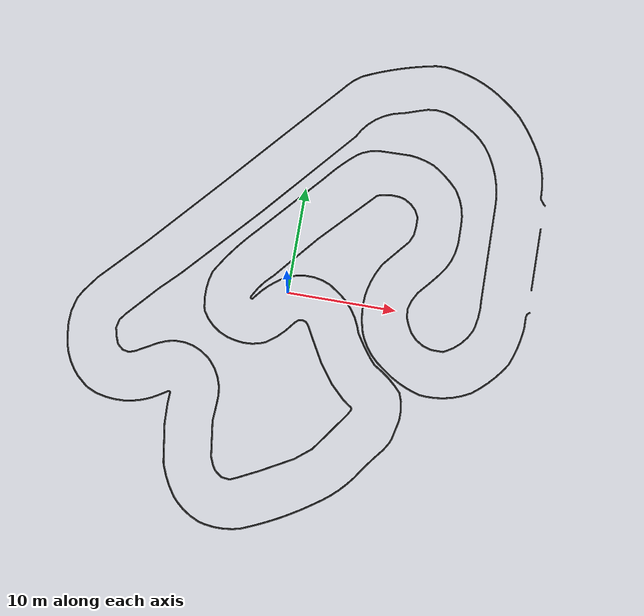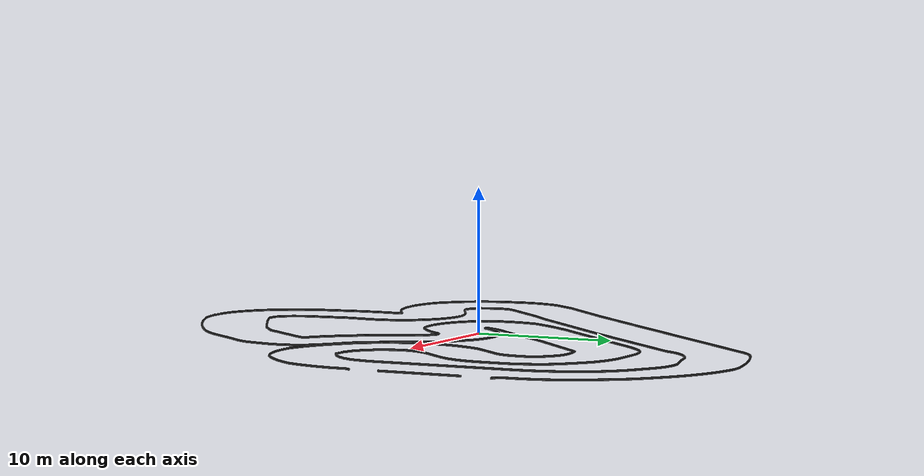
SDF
<?xml version="1.0"?>
<sdf version="1.5">
  <model name="track">
    <static>true</static>
    <link name="link">
      <visual name="visual">
        <cast_shadows>false</cast_shadows>
        <geometry>
          <mesh>
            <uri>model://urdf/cad/autoRallyTrackCCRF.dae</uri>
            <scale>1.0 1.0 1.0</scale>
          </mesh>
        </geometry>
        <material>
          <script>
            <uri>model://urdf/gazebo.material</uri>
            <name>Gazebo/Black</name>
          </script>
        </material>
      </visual>
    </link>
  </model>
</sdf>
